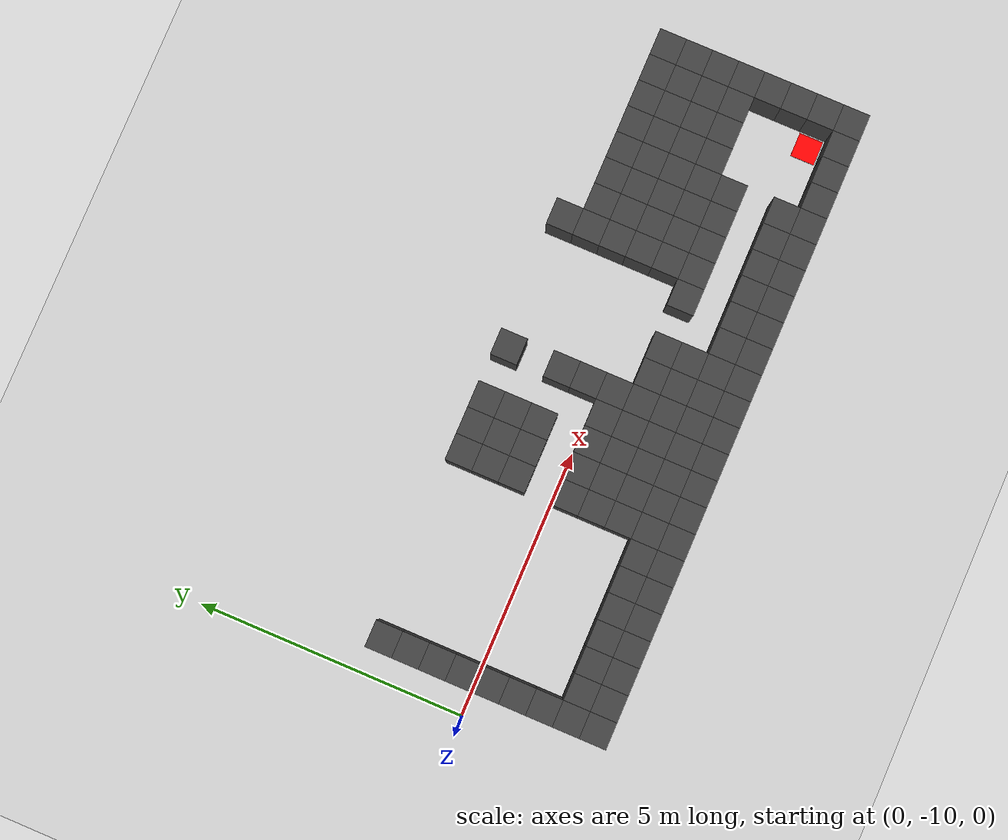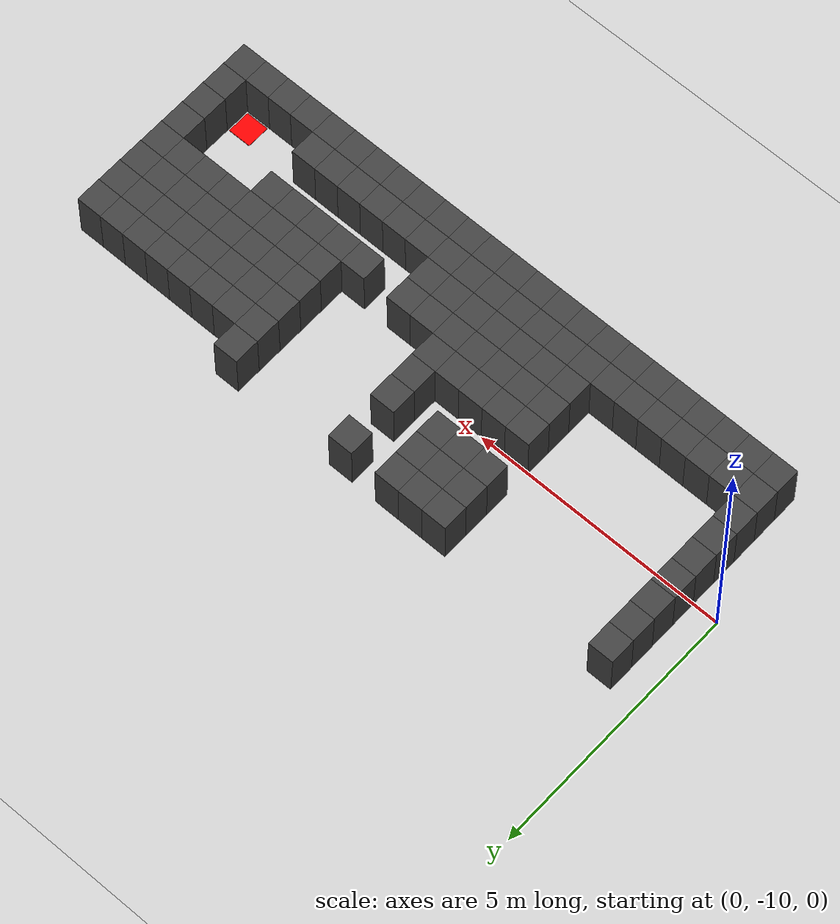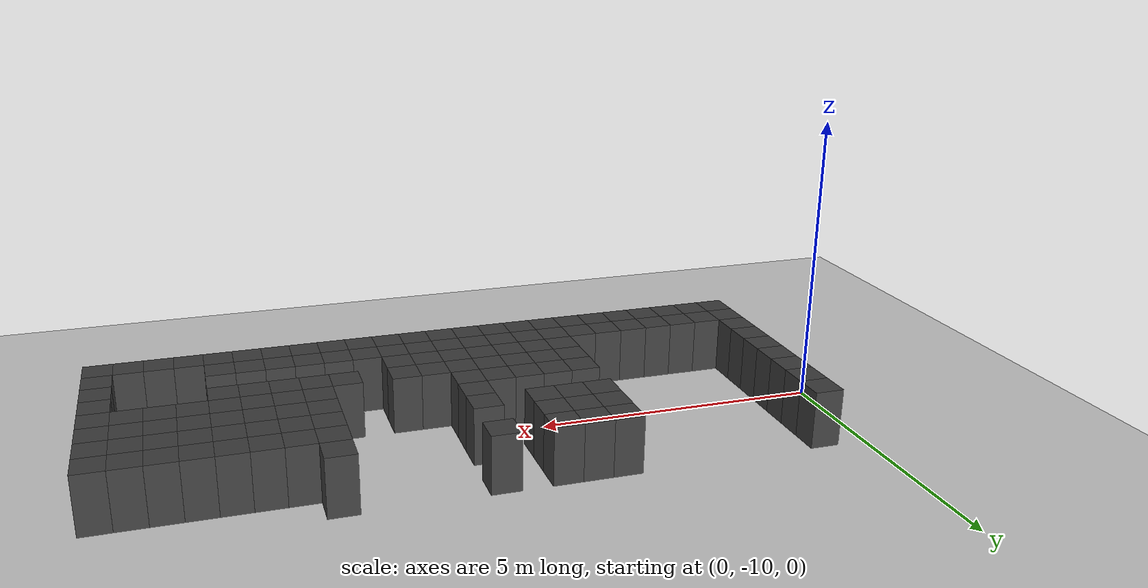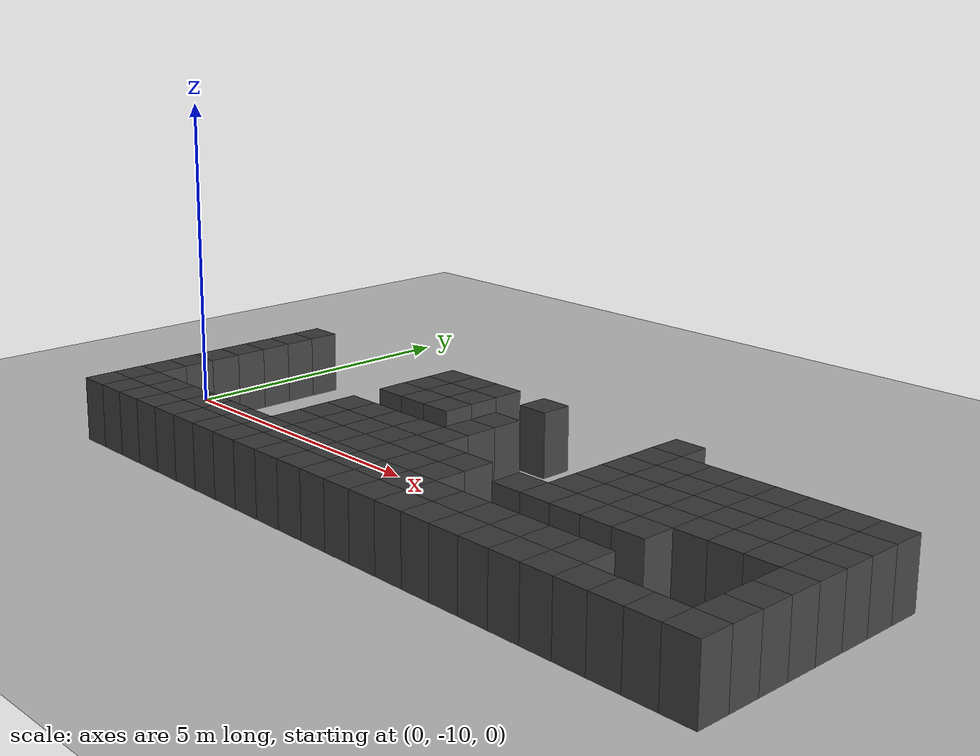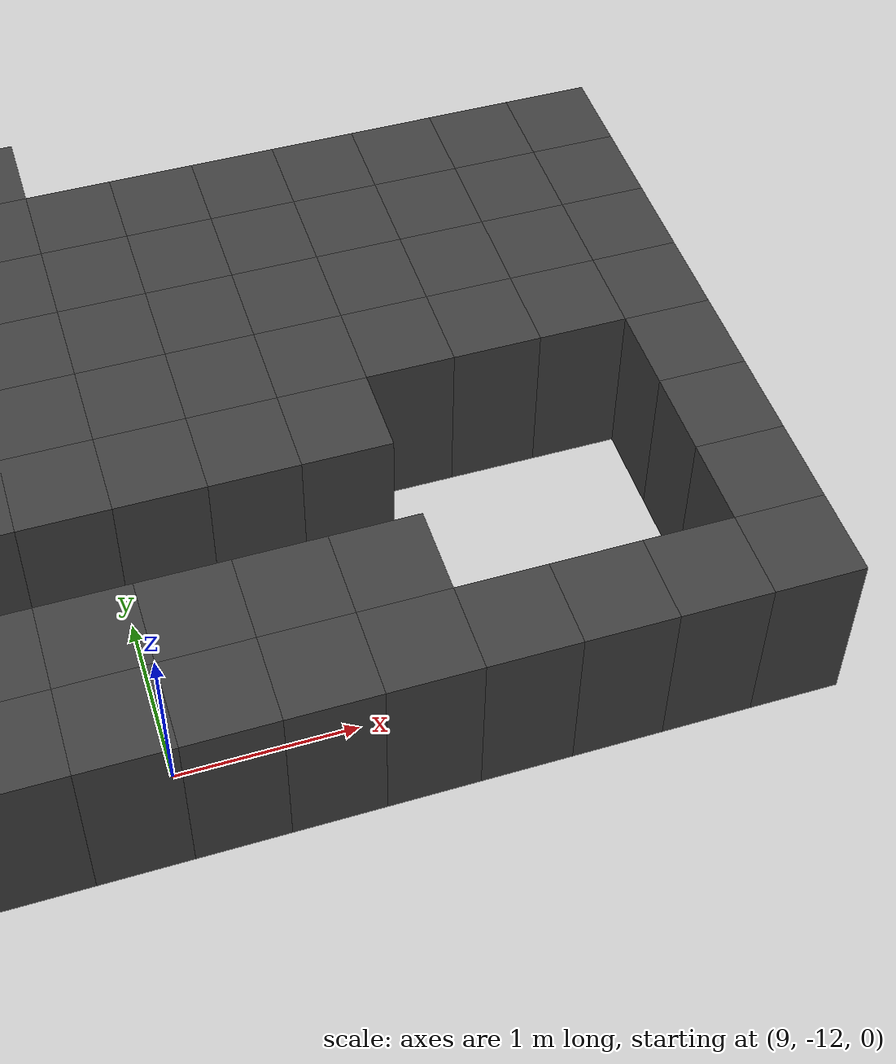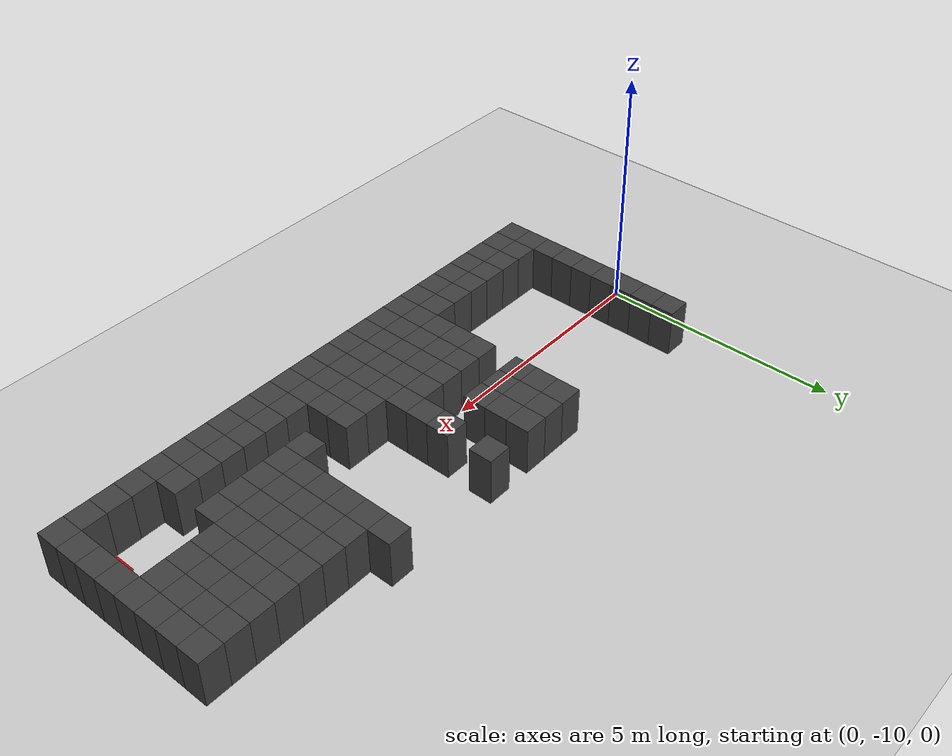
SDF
<sdf version="1.7">
 <world name="map_14668">
  <model name="ground_plane">
   <static>true</static>
   <link name="link">
    <collision name="collision">
     <geometry><plane><normal>0 0 1</normal><size>200 200</size></plane></geometry>
    </collision>
    <visual name="visual">
     <geometry><plane><normal>0 0 1</normal><size>200 200</size></plane></geometry>
     <material><ambient>0.8 0.8 0.8 1</ambient><diffuse>0.8 0.8 0.8 1</diffuse></material>
    </visual>
   </link>
  </model>
  <model name="maze_environment">
   <static>true</static>
   <link name="wall_1426">
    <pose>0.750 -8.250 0.500 0 0 0</pose>
    <collision name="col"><geometry><box><size>0.5 0.5 1.0</size></box></geometry></collision>
    <visual name="vis">
     <geometry><box><size>0.5 0.5 1.0</size></box></geometry>
     <material><ambient>0.15 0.15 0.15 1</ambient><diffuse>0.25 0.25 0.25 1</diffuse></material>
    </visual>
   </link>
   <link name="wall_1427">
    <pose>4.250 -8.250 0.500 0 0 0</pose>
    <collision name="col"><geometry><box><size>0.5 0.5 1.0</size></box></geometry></collision>
    <visual name="vis">
     <geometry><box><size>0.5 0.5 1.0</size></box></geometry>
     <material><ambient>0.15 0.15 0.15 1</ambient><diffuse>0.25 0.25 0.25 1</diffuse></material>
    </visual>
   </link>
   <link name="wall_1428">
    <pose>4.750 -8.250 0.500 0 0 0</pose>
    <collision name="col"><geometry><box><size>0.5 0.5 1.0</size></box></geometry></collision>
    <visual name="vis">
     <geometry><box><size>0.5 0.5 1.0</size></box></geometry>
     <material><ambient>0.15 0.15 0.15 1</ambient><diffuse>0.25 0.25 0.25 1</diffuse></material>
    </visual>
   </link>
   <link name="wall_1429">
    <pose>5.250 -8.250 0.500 0 0 0</pose>
    <collision name="col"><geometry><box><size>0.5 0.5 1.0</size></box></geometry></collision>
    <visual name="vis">
     <geometry><box><size>0.5 0.5 1.0</size></box></geometry>
     <material><ambient>0.15 0.15 0.15 1</ambient><diffuse>0.25 0.25 0.25 1</diffuse></material>
    </visual>
   </link>
   <link name="wall_1430">
    <pose>6.250 -8.250 0.500 0 0 0</pose>
    <collision name="col"><geometry><box><size>0.5 0.5 1.0</size></box></geometry></collision>
    <visual name="vis">
     <geometry><box><size>0.5 0.5 1.0</size></box></geometry>
     <material><ambient>0.15 0.15 0.15 1</ambient><diffuse>0.25 0.25 0.25 1</diffuse></material>
    </visual>
   </link>
   <link name="wall_1431">
    <pose>8.750 -8.250 0.500 0 0 0</pose>
    <collision name="col"><geometry><box><size>0.5 0.5 1.0</size></box></geometry></collision>
    <visual name="vis">
     <geometry><box><size>0.5 0.5 1.0</size></box></geometry>
     <material><ambient>0.15 0.15 0.15 1</ambient><diffuse>0.25 0.25 0.25 1</diffuse></material>
    </visual>
   </link>
   <link name="wall_1457">
    <pose>0.750 -8.750 0.500 0 0 0</pose>
    <collision name="col"><geometry><box><size>0.5 0.5 1.0</size></box></geometry></collision>
    <visual name="vis">
     <geometry><box><size>0.5 0.5 1.0</size></box></geometry>
     <material><ambient>0.15 0.15 0.15 1</ambient><diffuse>0.25 0.25 0.25 1</diffuse></material>
    </visual>
   </link>
   <link name="wall_1458">
    <pose>4.250 -8.750 0.500 0 0 0</pose>
    <collision name="col"><geometry><box><size>0.5 0.5 1.0</size></box></geometry></collision>
    <visual name="vis">
     <geometry><box><size>0.5 0.5 1.0</size></box></geometry>
     <material><ambient>0.15 0.15 0.15 1</ambient><diffuse>0.25 0.25 0.25 1</diffuse></material>
    </visual>
   </link>
   <link name="wall_1459">
    <pose>4.750 -8.750 0.500 0 0 0</pose>
    <collision name="col"><geometry><box><size>0.5 0.5 1.0</size></box></geometry></collision>
    <visual name="vis">
     <geometry><box><size>0.5 0.5 1.0</size></box></geometry>
     <material><ambient>0.15 0.15 0.15 1</ambient><diffuse>0.25 0.25 0.25 1</diffuse></material>
    </visual>
   </link>
   <link name="wall_1460">
    <pose>5.250 -8.750 0.500 0 0 0</pose>
    <collision name="col"><geometry><box><size>0.5 0.5 1.0</size></box></geometry></collision>
    <visual name="vis">
     <geometry><box><size>0.5 0.5 1.0</size></box></geometry>
     <material><ambient>0.15 0.15 0.15 1</ambient><diffuse>0.25 0.25 0.25 1</diffuse></material>
    </visual>
   </link>
   <link name="wall_1461">
    <pose>8.750 -8.750 0.500 0 0 0</pose>
    <collision name="col"><geometry><box><size>0.5 0.5 1.0</size></box></geometry></collision>
    <visual name="vis">
     <geometry><box><size>0.5 0.5 1.0</size></box></geometry>
     <material><ambient>0.15 0.15 0.15 1</ambient><diffuse>0.25 0.25 0.25 1</diffuse></material>
    </visual>
   </link>
   <link name="wall_1462">
    <pose>9.250 -8.750 0.500 0 0 0</pose>
    <collision name="col"><geometry><box><size>0.5 0.5 1.0</size></box></geometry></collision>
    <visual name="vis">
     <geometry><box><size>0.5 0.5 1.0</size></box></geometry>
     <material><ambient>0.15 0.15 0.15 1</ambient><diffuse>0.25 0.25 0.25 1</diffuse></material>
    </visual>
   </link>
   <link name="wall_1463">
    <pose>9.750 -8.750 0.500 0 0 0</pose>
    <collision name="col"><geometry><box><size>0.5 0.5 1.0</size></box></geometry></collision>
    <visual name="vis">
     <geometry><box><size>0.5 0.5 1.0</size></box></geometry>
     <material><ambient>0.15 0.15 0.15 1</ambient><diffuse>0.25 0.25 0.25 1</diffuse></material>
    </visual>
   </link>
   <link name="wall_1464">
    <pose>10.250 -8.750 0.500 0 0 0</pose>
    <collision name="col"><geometry><box><size>0.5 0.5 1.0</size></box></geometry></collision>
    <visual name="vis">
     <geometry><box><size>0.5 0.5 1.0</size></box></geometry>
     <material><ambient>0.15 0.15 0.15 1</ambient><diffuse>0.25 0.25 0.25 1</diffuse></material>
    </visual>
   </link>
   <link name="wall_1465">
    <pose>10.750 -8.750 0.500 0 0 0</pose>
    <collision name="col"><geometry><box><size>0.5 0.5 1.0</size></box></geometry></collision>
    <visual name="vis">
     <geometry><box><size>0.5 0.5 1.0</size></box></geometry>
     <material><ambient>0.15 0.15 0.15 1</ambient><diffuse>0.25 0.25 0.25 1</diffuse></material>
    </visual>
   </link>
   <link name="wall_1466">
    <pose>11.250 -8.750 0.500 0 0 0</pose>
    <collision name="col"><geometry><box><size>0.5 0.5 1.0</size></box></geometry></collision>
    <visual name="vis">
     <geometry><box><size>0.5 0.5 1.0</size></box></geometry>
     <material><ambient>0.15 0.15 0.15 1</ambient><diffuse>0.25 0.25 0.25 1</diffuse></material>
    </visual>
   </link>
   <link name="wall_1467">
    <pose>11.750 -8.750 0.500 0 0 0</pose>
    <collision name="col"><geometry><box><size>0.5 0.5 1.0</size></box></geometry></collision>
    <visual name="vis">
     <geometry><box><size>0.5 0.5 1.0</size></box></geometry>
     <material><ambient>0.15 0.15 0.15 1</ambient><diffuse>0.25 0.25 0.25 1</diffuse></material>
    </visual>
   </link>
   <link name="wall_1468">
    <pose>12.250 -8.750 0.500 0 0 0</pose>
    <collision name="col"><geometry><box><size>0.5 0.5 1.0</size></box></geometry></collision>
    <visual name="vis">
     <geometry><box><size>0.5 0.5 1.0</size></box></geometry>
     <material><ambient>0.15 0.15 0.15 1</ambient><diffuse>0.25 0.25 0.25 1</diffuse></material>
    </visual>
   </link>
   <link name="wall_1488">
    <pose>0.750 -9.250 0.500 0 0 0</pose>
    <collision name="col"><geometry><box><size>0.5 0.5 1.0</size></box></geometry></collision>
    <visual name="vis">
     <geometry><box><size>0.5 0.5 1.0</size></box></geometry>
     <material><ambient>0.15 0.15 0.15 1</ambient><diffuse>0.25 0.25 0.25 1</diffuse></material>
    </visual>
   </link>
   <link name="wall_1489">
    <pose>4.250 -9.250 0.500 0 0 0</pose>
    <collision name="col"><geometry><box><size>0.5 0.5 1.0</size></box></geometry></collision>
    <visual name="vis">
     <geometry><box><size>0.5 0.5 1.0</size></box></geometry>
     <material><ambient>0.15 0.15 0.15 1</ambient><diffuse>0.25 0.25 0.25 1</diffuse></material>
    </visual>
   </link>
   <link name="wall_1490">
    <pose>4.750 -9.250 0.500 0 0 0</pose>
    <collision name="col"><geometry><box><size>0.5 0.5 1.0</size></box></geometry></collision>
    <visual name="vis">
     <geometry><box><size>0.5 0.5 1.0</size></box></geometry>
     <material><ambient>0.15 0.15 0.15 1</ambient><diffuse>0.25 0.25 0.25 1</diffuse></material>
    </visual>
   </link>
   <link name="wall_1491">
    <pose>5.250 -9.250 0.500 0 0 0</pose>
    <collision name="col"><geometry><box><size>0.5 0.5 1.0</size></box></geometry></collision>
    <visual name="vis">
     <geometry><box><size>0.5 0.5 1.0</size></box></geometry>
     <material><ambient>0.15 0.15 0.15 1</ambient><diffuse>0.25 0.25 0.25 1</diffuse></material>
    </visual>
   </link>
   <link name="wall_1492">
    <pose>6.250 -9.250 0.500 0 0 0</pose>
    <collision name="col"><geometry><box><size>0.5 0.5 1.0</size></box></geometry></collision>
    <visual name="vis">
     <geometry><box><size>0.5 0.5 1.0</size></box></geometry>
     <material><ambient>0.15 0.15 0.15 1</ambient><diffuse>0.25 0.25 0.25 1</diffuse></material>
    </visual>
   </link>
   <link name="wall_1493">
    <pose>8.750 -9.250 0.500 0 0 0</pose>
    <collision name="col"><geometry><box><size>0.5 0.5 1.0</size></box></geometry></collision>
    <visual name="vis">
     <geometry><box><size>0.5 0.5 1.0</size></box></geometry>
     <material><ambient>0.15 0.15 0.15 1</ambient><diffuse>0.25 0.25 0.25 1</diffuse></material>
    </visual>
   </link>
   <link name="wall_1494">
    <pose>9.250 -9.250 0.500 0 0 0</pose>
    <collision name="col"><geometry><box><size>0.5 0.5 1.0</size></box></geometry></collision>
    <visual name="vis">
     <geometry><box><size>0.5 0.5 1.0</size></box></geometry>
     <material><ambient>0.15 0.15 0.15 1</ambient><diffuse>0.25 0.25 0.25 1</diffuse></material>
    </visual>
   </link>
   <link name="wall_1495">
    <pose>9.750 -9.250 0.500 0 0 0</pose>
    <collision name="col"><geometry><box><size>0.5 0.5 1.0</size></box></geometry></collision>
    <visual name="vis">
     <geometry><box><size>0.5 0.5 1.0</size></box></geometry>
     <material><ambient>0.15 0.15 0.15 1</ambient><diffuse>0.25 0.25 0.25 1</diffuse></material>
    </visual>
   </link>
   <link name="wall_1496">
    <pose>10.250 -9.250 0.500 0 0 0</pose>
    <collision name="col"><geometry><box><size>0.5 0.5 1.0</size></box></geometry></collision>
    <visual name="vis">
     <geometry><box><size>0.5 0.5 1.0</size></box></geometry>
     <material><ambient>0.15 0.15 0.15 1</ambient><diffuse>0.25 0.25 0.25 1</diffuse></material>
    </visual>
   </link>
   <link name="wall_1497">
    <pose>10.750 -9.250 0.500 0 0 0</pose>
    <collision name="col"><geometry><box><size>0.5 0.5 1.0</size></box></geometry></collision>
    <visual name="vis">
     <geometry><box><size>0.5 0.5 1.0</size></box></geometry>
     <material><ambient>0.15 0.15 0.15 1</ambient><diffuse>0.25 0.25 0.25 1</diffuse></material>
    </visual>
   </link>
   <link name="wall_1498">
    <pose>11.250 -9.250 0.500 0 0 0</pose>
    <collision name="col"><geometry><box><size>0.5 0.5 1.0</size></box></geometry></collision>
    <visual name="vis">
     <geometry><box><size>0.5 0.5 1.0</size></box></geometry>
     <material><ambient>0.15 0.15 0.15 1</ambient><diffuse>0.25 0.25 0.25 1</diffuse></material>
    </visual>
   </link>
   <link name="wall_1499">
    <pose>11.750 -9.250 0.500 0 0 0</pose>
    <collision name="col"><geometry><box><size>0.5 0.5 1.0</size></box></geometry></collision>
    <visual name="vis">
     <geometry><box><size>0.5 0.5 1.0</size></box></geometry>
     <material><ambient>0.15 0.15 0.15 1</ambient><diffuse>0.25 0.25 0.25 1</diffuse></material>
    </visual>
   </link>
   <link name="wall_1500">
    <pose>12.250 -9.250 0.500 0 0 0</pose>
    <collision name="col"><geometry><box><size>0.5 0.5 1.0</size></box></geometry></collision>
    <visual name="vis">
     <geometry><box><size>0.5 0.5 1.0</size></box></geometry>
     <material><ambient>0.15 0.15 0.15 1</ambient><diffuse>0.25 0.25 0.25 1</diffuse></material>
    </visual>
   </link>
   <link name="wall_1520">
    <pose>0.750 -9.750 0.500 0 0 0</pose>
    <collision name="col"><geometry><box><size>0.5 0.5 1.0</size></box></geometry></collision>
    <visual name="vis">
     <geometry><box><size>0.5 0.5 1.0</size></box></geometry>
     <material><ambient>0.15 0.15 0.15 1</ambient><diffuse>0.25 0.25 0.25 1</diffuse></material>
    </visual>
   </link>
   <link name="wall_1521">
    <pose>6.250 -9.750 0.500 0 0 0</pose>
    <collision name="col"><geometry><box><size>0.5 0.5 1.0</size></box></geometry></collision>
    <visual name="vis">
     <geometry><box><size>0.5 0.5 1.0</size></box></geometry>
     <material><ambient>0.15 0.15 0.15 1</ambient><diffuse>0.25 0.25 0.25 1</diffuse></material>
    </visual>
   </link>
   <link name="wall_1522">
    <pose>8.750 -9.750 0.500 0 0 0</pose>
    <collision name="col"><geometry><box><size>0.5 0.5 1.0</size></box></geometry></collision>
    <visual name="vis">
     <geometry><box><size>0.5 0.5 1.0</size></box></geometry>
     <material><ambient>0.15 0.15 0.15 1</ambient><diffuse>0.25 0.25 0.25 1</diffuse></material>
    </visual>
   </link>
   <link name="wall_1523">
    <pose>9.250 -9.750 0.500 0 0 0</pose>
    <collision name="col"><geometry><box><size>0.5 0.5 1.0</size></box></geometry></collision>
    <visual name="vis">
     <geometry><box><size>0.5 0.5 1.0</size></box></geometry>
     <material><ambient>0.15 0.15 0.15 1</ambient><diffuse>0.25 0.25 0.25 1</diffuse></material>
    </visual>
   </link>
   <link name="wall_1524">
    <pose>9.750 -9.750 0.500 0 0 0</pose>
    <collision name="col"><geometry><box><size>0.5 0.5 1.0</size></box></geometry></collision>
    <visual name="vis">
     <geometry><box><size>0.5 0.5 1.0</size></box></geometry>
     <material><ambient>0.15 0.15 0.15 1</ambient><diffuse>0.25 0.25 0.25 1</diffuse></material>
    </visual>
   </link>
   <link name="wall_1525">
    <pose>10.250 -9.750 0.500 0 0 0</pose>
    <collision name="col"><geometry><box><size>0.5 0.5 1.0</size></box></geometry></collision>
    <visual name="vis">
     <geometry><box><size>0.5 0.5 1.0</size></box></geometry>
     <material><ambient>0.15 0.15 0.15 1</ambient><diffuse>0.25 0.25 0.25 1</diffuse></material>
    </visual>
   </link>
   <link name="wall_1526">
    <pose>10.750 -9.750 0.500 0 0 0</pose>
    <collision name="col"><geometry><box><size>0.5 0.5 1.0</size></box></geometry></collision>
    <visual name="vis">
     <geometry><box><size>0.5 0.5 1.0</size></box></geometry>
     <material><ambient>0.15 0.15 0.15 1</ambient><diffuse>0.25 0.25 0.25 1</diffuse></material>
    </visual>
   </link>
   <link name="wall_1527">
    <pose>11.250 -9.750 0.500 0 0 0</pose>
    <collision name="col"><geometry><box><size>0.5 0.5 1.0</size></box></geometry></collision>
    <visual name="vis">
     <geometry><box><size>0.5 0.5 1.0</size></box></geometry>
     <material><ambient>0.15 0.15 0.15 1</ambient><diffuse>0.25 0.25 0.25 1</diffuse></material>
    </visual>
   </link>
   <link name="wall_1528">
    <pose>11.750 -9.750 0.500 0 0 0</pose>
    <collision name="col"><geometry><box><size>0.5 0.5 1.0</size></box></geometry></collision>
    <visual name="vis">
     <geometry><box><size>0.5 0.5 1.0</size></box></geometry>
     <material><ambient>0.15 0.15 0.15 1</ambient><diffuse>0.25 0.25 0.25 1</diffuse></material>
    </visual>
   </link>
   <link name="wall_1529">
    <pose>12.250 -9.750 0.500 0 0 0</pose>
    <collision name="col"><geometry><box><size>0.5 0.5 1.0</size></box></geometry></collision>
    <visual name="vis">
     <geometry><box><size>0.5 0.5 1.0</size></box></geometry>
     <material><ambient>0.15 0.15 0.15 1</ambient><diffuse>0.25 0.25 0.25 1</diffuse></material>
    </visual>
   </link>
   <link name="wall_1549">
    <pose>0.750 -10.250 0.500 0 0 0</pose>
    <collision name="col"><geometry><box><size>0.5 0.5 1.0</size></box></geometry></collision>
    <visual name="vis">
     <geometry><box><size>0.5 0.5 1.0</size></box></geometry>
     <material><ambient>0.15 0.15 0.15 1</ambient><diffuse>0.25 0.25 0.25 1</diffuse></material>
    </visual>
   </link>
   <link name="wall_1550">
    <pose>4.250 -10.250 0.500 0 0 0</pose>
    <collision name="col"><geometry><box><size>0.5 0.5 1.0</size></box></geometry></collision>
    <visual name="vis">
     <geometry><box><size>0.5 0.5 1.0</size></box></geometry>
     <material><ambient>0.15 0.15 0.15 1</ambient><diffuse>0.25 0.25 0.25 1</diffuse></material>
    </visual>
   </link>
   <link name="wall_1551">
    <pose>4.750 -10.250 0.500 0 0 0</pose>
    <collision name="col"><geometry><box><size>0.5 0.5 1.0</size></box></geometry></collision>
    <visual name="vis">
     <geometry><box><size>0.5 0.5 1.0</size></box></geometry>
     <material><ambient>0.15 0.15 0.15 1</ambient><diffuse>0.25 0.25 0.25 1</diffuse></material>
    </visual>
   </link>
   <link name="wall_1552">
    <pose>5.250 -10.250 0.500 0 0 0</pose>
    <collision name="col"><geometry><box><size>0.5 0.5 1.0</size></box></geometry></collision>
    <visual name="vis">
     <geometry><box><size>0.5 0.5 1.0</size></box></geometry>
     <material><ambient>0.15 0.15 0.15 1</ambient><diffuse>0.25 0.25 0.25 1</diffuse></material>
    </visual>
   </link>
   <link name="wall_1553">
    <pose>5.750 -10.250 0.500 0 0 0</pose>
    <collision name="col"><geometry><box><size>0.5 0.5 1.0</size></box></geometry></collision>
    <visual name="vis">
     <geometry><box><size>0.5 0.5 1.0</size></box></geometry>
     <material><ambient>0.15 0.15 0.15 1</ambient><diffuse>0.25 0.25 0.25 1</diffuse></material>
    </visual>
   </link>
   <link name="wall_1554">
    <pose>6.250 -10.250 0.500 0 0 0</pose>
    <collision name="col"><geometry><box><size>0.5 0.5 1.0</size></box></geometry></collision>
    <visual name="vis">
     <geometry><box><size>0.5 0.5 1.0</size></box></geometry>
     <material><ambient>0.15 0.15 0.15 1</ambient><diffuse>0.25 0.25 0.25 1</diffuse></material>
    </visual>
   </link>
   <link name="wall_1555">
    <pose>8.750 -10.250 0.500 0 0 0</pose>
    <collision name="col"><geometry><box><size>0.5 0.5 1.0</size></box></geometry></collision>
    <visual name="vis">
     <geometry><box><size>0.5 0.5 1.0</size></box></geometry>
     <material><ambient>0.15 0.15 0.15 1</ambient><diffuse>0.25 0.25 0.25 1</diffuse></material>
    </visual>
   </link>
   <link name="wall_1556">
    <pose>9.250 -10.250 0.500 0 0 0</pose>
    <collision name="col"><geometry><box><size>0.5 0.5 1.0</size></box></geometry></collision>
    <visual name="vis">
     <geometry><box><size>0.5 0.5 1.0</size></box></geometry>
     <material><ambient>0.15 0.15 0.15 1</ambient><diffuse>0.25 0.25 0.25 1</diffuse></material>
    </visual>
   </link>
   <link name="wall_1557">
    <pose>9.750 -10.250 0.500 0 0 0</pose>
    <collision name="col"><geometry><box><size>0.5 0.5 1.0</size></box></geometry></collision>
    <visual name="vis">
     <geometry><box><size>0.5 0.5 1.0</size></box></geometry>
     <material><ambient>0.15 0.15 0.15 1</ambient><diffuse>0.25 0.25 0.25 1</diffuse></material>
    </visual>
   </link>
   <link name="wall_1558">
    <pose>10.250 -10.250 0.500 0 0 0</pose>
    <collision name="col"><geometry><box><size>0.5 0.5 1.0</size></box></geometry></collision>
    <visual name="vis">
     <geometry><box><size>0.5 0.5 1.0</size></box></geometry>
     <material><ambient>0.15 0.15 0.15 1</ambient><diffuse>0.25 0.25 0.25 1</diffuse></material>
    </visual>
   </link>
   <link name="wall_1559">
    <pose>10.750 -10.250 0.500 0 0 0</pose>
    <collision name="col"><geometry><box><size>0.5 0.5 1.0</size></box></geometry></collision>
    <visual name="vis">
     <geometry><box><size>0.5 0.5 1.0</size></box></geometry>
     <material><ambient>0.15 0.15 0.15 1</ambient><diffuse>0.25 0.25 0.25 1</diffuse></material>
    </visual>
   </link>
   <link name="wall_1560">
    <pose>11.250 -10.250 0.500 0 0 0</pose>
    <collision name="col"><geometry><box><size>0.5 0.5 1.0</size></box></geometry></collision>
    <visual name="vis">
     <geometry><box><size>0.5 0.5 1.0</size></box></geometry>
     <material><ambient>0.15 0.15 0.15 1</ambient><diffuse>0.25 0.25 0.25 1</diffuse></material>
    </visual>
   </link>
   <link name="wall_1561">
    <pose>11.750 -10.250 0.500 0 0 0</pose>
    <collision name="col"><geometry><box><size>0.5 0.5 1.0</size></box></geometry></collision>
    <visual name="vis">
     <geometry><box><size>0.5 0.5 1.0</size></box></geometry>
     <material><ambient>0.15 0.15 0.15 1</ambient><diffuse>0.25 0.25 0.25 1</diffuse></material>
    </visual>
   </link>
   <link name="wall_1562">
    <pose>12.250 -10.250 0.500 0 0 0</pose>
    <collision name="col"><geometry><box><size>0.5 0.5 1.0</size></box></geometry></collision>
    <visual name="vis">
     <geometry><box><size>0.5 0.5 1.0</size></box></geometry>
     <material><ambient>0.15 0.15 0.15 1</ambient><diffuse>0.25 0.25 0.25 1</diffuse></material>
    </visual>
   </link>
   <link name="wall_1589">
    <pose>0.750 -10.750 0.500 0 0 0</pose>
    <collision name="col"><geometry><box><size>0.5 0.5 1.0</size></box></geometry></collision>
    <visual name="vis">
     <geometry><box><size>0.5 0.5 1.0</size></box></geometry>
     <material><ambient>0.15 0.15 0.15 1</ambient><diffuse>0.25 0.25 0.25 1</diffuse></material>
    </visual>
   </link>
   <link name="wall_1590">
    <pose>4.250 -10.750 0.500 0 0 0</pose>
    <collision name="col"><geometry><box><size>0.5 0.5 1.0</size></box></geometry></collision>
    <visual name="vis">
     <geometry><box><size>0.5 0.5 1.0</size></box></geometry>
     <material><ambient>0.15 0.15 0.15 1</ambient><diffuse>0.25 0.25 0.25 1</diffuse></material>
    </visual>
   </link>
   <link name="wall_1591">
    <pose>4.750 -10.750 0.500 0 0 0</pose>
    <collision name="col"><geometry><box><size>0.5 0.5 1.0</size></box></geometry></collision>
    <visual name="vis">
     <geometry><box><size>0.5 0.5 1.0</size></box></geometry>
     <material><ambient>0.15 0.15 0.15 1</ambient><diffuse>0.25 0.25 0.25 1</diffuse></material>
    </visual>
   </link>
   <link name="wall_1592">
    <pose>5.250 -10.750 0.500 0 0 0</pose>
    <collision name="col"><geometry><box><size>0.5 0.5 1.0</size></box></geometry></collision>
    <visual name="vis">
     <geometry><box><size>0.5 0.5 1.0</size></box></geometry>
     <material><ambient>0.15 0.15 0.15 1</ambient><diffuse>0.25 0.25 0.25 1</diffuse></material>
    </visual>
   </link>
   <link name="wall_1593">
    <pose>5.750 -10.750 0.500 0 0 0</pose>
    <collision name="col"><geometry><box><size>0.5 0.5 1.0</size></box></geometry></collision>
    <visual name="vis">
     <geometry><box><size>0.5 0.5 1.0</size></box></geometry>
     <material><ambient>0.15 0.15 0.15 1</ambient><diffuse>0.25 0.25 0.25 1</diffuse></material>
    </visual>
   </link>
   <link name="wall_1594">
    <pose>6.250 -10.750 0.500 0 0 0</pose>
    <collision name="col"><geometry><box><size>0.5 0.5 1.0</size></box></geometry></collision>
    <visual name="vis">
     <geometry><box><size>0.5 0.5 1.0</size></box></geometry>
     <material><ambient>0.15 0.15 0.15 1</ambient><diffuse>0.25 0.25 0.25 1</diffuse></material>
    </visual>
   </link>
   <link name="wall_1595">
    <pose>6.750 -10.750 0.500 0 0 0</pose>
    <collision name="col"><geometry><box><size>0.5 0.5 1.0</size></box></geometry></collision>
    <visual name="vis">
     <geometry><box><size>0.5 0.5 1.0</size></box></geometry>
     <material><ambient>0.15 0.15 0.15 1</ambient><diffuse>0.25 0.25 0.25 1</diffuse></material>
    </visual>
   </link>
   <link name="wall_1596">
    <pose>7.250 -10.750 0.500 0 0 0</pose>
    <collision name="col"><geometry><box><size>0.5 0.5 1.0</size></box></geometry></collision>
    <visual name="vis">
     <geometry><box><size>0.5 0.5 1.0</size></box></geometry>
     <material><ambient>0.15 0.15 0.15 1</ambient><diffuse>0.25 0.25 0.25 1</diffuse></material>
    </visual>
   </link>
   <link name="wall_1597">
    <pose>8.250 -10.750 0.500 0 0 0</pose>
    <collision name="col"><geometry><box><size>0.5 0.5 1.0</size></box></geometry></collision>
    <visual name="vis">
     <geometry><box><size>0.5 0.5 1.0</size></box></geometry>
     <material><ambient>0.15 0.15 0.15 1</ambient><diffuse>0.25 0.25 0.25 1</diffuse></material>
    </visual>
   </link>
   <link name="wall_1598">
    <pose>8.750 -10.750 0.500 0 0 0</pose>
    <collision name="col"><geometry><box><size>0.5 0.5 1.0</size></box></geometry></collision>
    <visual name="vis">
     <geometry><box><size>0.5 0.5 1.0</size></box></geometry>
     <material><ambient>0.15 0.15 0.15 1</ambient><diffuse>0.25 0.25 0.25 1</diffuse></material>
    </visual>
   </link>
   <link name="wall_1599">
    <pose>9.250 -10.750 0.500 0 0 0</pose>
    <collision name="col"><geometry><box><size>0.5 0.5 1.0</size></box></geometry></collision>
    <visual name="vis">
     <geometry><box><size>0.5 0.5 1.0</size></box></geometry>
     <material><ambient>0.15 0.15 0.15 1</ambient><diffuse>0.25 0.25 0.25 1</diffuse></material>
    </visual>
   </link>
   <link name="wall_1600">
    <pose>9.750 -10.750 0.500 0 0 0</pose>
    <collision name="col"><geometry><box><size>0.5 0.5 1.0</size></box></geometry></collision>
    <visual name="vis">
     <geometry><box><size>0.5 0.5 1.0</size></box></geometry>
     <material><ambient>0.15 0.15 0.15 1</ambient><diffuse>0.25 0.25 0.25 1</diffuse></material>
    </visual>
   </link>
   <link name="wall_1601">
    <pose>10.250 -10.750 0.500 0 0 0</pose>
    <collision name="col"><geometry><box><size>0.5 0.5 1.0</size></box></geometry></collision>
    <visual name="vis">
     <geometry><box><size>0.5 0.5 1.0</size></box></geometry>
     <material><ambient>0.15 0.15 0.15 1</ambient><diffuse>0.25 0.25 0.25 1</diffuse></material>
    </visual>
   </link>
   <link name="wall_1602">
    <pose>12.250 -10.750 0.500 0 0 0</pose>
    <collision name="col"><geometry><box><size>0.5 0.5 1.0</size></box></geometry></collision>
    <visual name="vis">
     <geometry><box><size>0.5 0.5 1.0</size></box></geometry>
     <material><ambient>0.15 0.15 0.15 1</ambient><diffuse>0.25 0.25 0.25 1</diffuse></material>
    </visual>
   </link>
   <link name="wall_1629">
    <pose>0.750 -11.250 0.500 0 0 0</pose>
    <collision name="col"><geometry><box><size>0.5 0.5 1.0</size></box></geometry></collision>
    <visual name="vis">
     <geometry><box><size>0.5 0.5 1.0</size></box></geometry>
     <material><ambient>0.15 0.15 0.15 1</ambient><diffuse>0.25 0.25 0.25 1</diffuse></material>
    </visual>
   </link>
   <link name="wall_1630">
    <pose>4.250 -11.250 0.500 0 0 0</pose>
    <collision name="col"><geometry><box><size>0.5 0.5 1.0</size></box></geometry></collision>
    <visual name="vis">
     <geometry><box><size>0.5 0.5 1.0</size></box></geometry>
     <material><ambient>0.15 0.15 0.15 1</ambient><diffuse>0.25 0.25 0.25 1</diffuse></material>
    </visual>
   </link>
   <link name="wall_1631">
    <pose>4.750 -11.250 0.500 0 0 0</pose>
    <collision name="col"><geometry><box><size>0.5 0.5 1.0</size></box></geometry></collision>
    <visual name="vis">
     <geometry><box><size>0.5 0.5 1.0</size></box></geometry>
     <material><ambient>0.15 0.15 0.15 1</ambient><diffuse>0.25 0.25 0.25 1</diffuse></material>
    </visual>
   </link>
   <link name="wall_1632">
    <pose>5.250 -11.250 0.500 0 0 0</pose>
    <collision name="col"><geometry><box><size>0.5 0.5 1.0</size></box></geometry></collision>
    <visual name="vis">
     <geometry><box><size>0.5 0.5 1.0</size></box></geometry>
     <material><ambient>0.15 0.15 0.15 1</ambient><diffuse>0.25 0.25 0.25 1</diffuse></material>
    </visual>
   </link>
   <link name="wall_1633">
    <pose>5.750 -11.250 0.500 0 0 0</pose>
    <collision name="col"><geometry><box><size>0.5 0.5 1.0</size></box></geometry></collision>
    <visual name="vis">
     <geometry><box><size>0.5 0.5 1.0</size></box></geometry>
     <material><ambient>0.15 0.15 0.15 1</ambient><diffuse>0.25 0.25 0.25 1</diffuse></material>
    </visual>
   </link>
   <link name="wall_1634">
    <pose>6.250 -11.250 0.500 0 0 0</pose>
    <collision name="col"><geometry><box><size>0.5 0.5 1.0</size></box></geometry></collision>
    <visual name="vis">
     <geometry><box><size>0.5 0.5 1.0</size></box></geometry>
     <material><ambient>0.15 0.15 0.15 1</ambient><diffuse>0.25 0.25 0.25 1</diffuse></material>
    </visual>
   </link>
   <link name="wall_1635">
    <pose>6.750 -11.250 0.500 0 0 0</pose>
    <collision name="col"><geometry><box><size>0.5 0.5 1.0</size></box></geometry></collision>
    <visual name="vis">
     <geometry><box><size>0.5 0.5 1.0</size></box></geometry>
     <material><ambient>0.15 0.15 0.15 1</ambient><diffuse>0.25 0.25 0.25 1</diffuse></material>
    </visual>
   </link>
   <link name="wall_1636">
    <pose>7.250 -11.250 0.500 0 0 0</pose>
    <collision name="col"><geometry><box><size>0.5 0.5 1.0</size></box></geometry></collision>
    <visual name="vis">
     <geometry><box><size>0.5 0.5 1.0</size></box></geometry>
     <material><ambient>0.15 0.15 0.15 1</ambient><diffuse>0.25 0.25 0.25 1</diffuse></material>
    </visual>
   </link>
   <link name="wall_1637">
    <pose>12.250 -11.250 0.500 0 0 0</pose>
    <collision name="col"><geometry><box><size>0.5 0.5 1.0</size></box></geometry></collision>
    <visual name="vis">
     <geometry><box><size>0.5 0.5 1.0</size></box></geometry>
     <material><ambient>0.15 0.15 0.15 1</ambient><diffuse>0.25 0.25 0.25 1</diffuse></material>
    </visual>
   </link>
   <link name="wall_1664">
    <pose>0.750 -11.750 0.500 0 0 0</pose>
    <collision name="col"><geometry><box><size>0.5 0.5 1.0</size></box></geometry></collision>
    <visual name="vis">
     <geometry><box><size>0.5 0.5 1.0</size></box></geometry>
     <material><ambient>0.15 0.15 0.15 1</ambient><diffuse>0.25 0.25 0.25 1</diffuse></material>
    </visual>
   </link>
   <link name="wall_1665">
    <pose>1.250 -11.750 0.500 0 0 0</pose>
    <collision name="col"><geometry><box><size>0.5 0.5 1.0</size></box></geometry></collision>
    <visual name="vis">
     <geometry><box><size>0.5 0.5 1.0</size></box></geometry>
     <material><ambient>0.15 0.15 0.15 1</ambient><diffuse>0.25 0.25 0.25 1</diffuse></material>
    </visual>
   </link>
   <link name="wall_1666">
    <pose>1.750 -11.750 0.500 0 0 0</pose>
    <collision name="col"><geometry><box><size>0.5 0.5 1.0</size></box></geometry></collision>
    <visual name="vis">
     <geometry><box><size>0.5 0.5 1.0</size></box></geometry>
     <material><ambient>0.15 0.15 0.15 1</ambient><diffuse>0.25 0.25 0.25 1</diffuse></material>
    </visual>
   </link>
   <link name="wall_1667">
    <pose>2.250 -11.750 0.500 0 0 0</pose>
    <collision name="col"><geometry><box><size>0.5 0.5 1.0</size></box></geometry></collision>
    <visual name="vis">
     <geometry><box><size>0.5 0.5 1.0</size></box></geometry>
     <material><ambient>0.15 0.15 0.15 1</ambient><diffuse>0.25 0.25 0.25 1</diffuse></material>
    </visual>
   </link>
   <link name="wall_1668">
    <pose>2.750 -11.750 0.500 0 0 0</pose>
    <collision name="col"><geometry><box><size>0.5 0.5 1.0</size></box></geometry></collision>
    <visual name="vis">
     <geometry><box><size>0.5 0.5 1.0</size></box></geometry>
     <material><ambient>0.15 0.15 0.15 1</ambient><diffuse>0.25 0.25 0.25 1</diffuse></material>
    </visual>
   </link>
   <link name="wall_1669">
    <pose>3.250 -11.750 0.500 0 0 0</pose>
    <collision name="col"><geometry><box><size>0.5 0.5 1.0</size></box></geometry></collision>
    <visual name="vis">
     <geometry><box><size>0.5 0.5 1.0</size></box></geometry>
     <material><ambient>0.15 0.15 0.15 1</ambient><diffuse>0.25 0.25 0.25 1</diffuse></material>
    </visual>
   </link>
   <link name="wall_1670">
    <pose>3.750 -11.750 0.500 0 0 0</pose>
    <collision name="col"><geometry><box><size>0.5 0.5 1.0</size></box></geometry></collision>
    <visual name="vis">
     <geometry><box><size>0.5 0.5 1.0</size></box></geometry>
     <material><ambient>0.15 0.15 0.15 1</ambient><diffuse>0.25 0.25 0.25 1</diffuse></material>
    </visual>
   </link>
   <link name="wall_1671">
    <pose>4.250 -11.750 0.500 0 0 0</pose>
    <collision name="col"><geometry><box><size>0.5 0.5 1.0</size></box></geometry></collision>
    <visual name="vis">
     <geometry><box><size>0.5 0.5 1.0</size></box></geometry>
     <material><ambient>0.15 0.15 0.15 1</ambient><diffuse>0.25 0.25 0.25 1</diffuse></material>
    </visual>
   </link>
   <link name="wall_1672">
    <pose>4.750 -11.750 0.500 0 0 0</pose>
    <collision name="col"><geometry><box><size>0.5 0.5 1.0</size></box></geometry></collision>
    <visual name="vis">
     <geometry><box><size>0.5 0.5 1.0</size></box></geometry>
     <material><ambient>0.15 0.15 0.15 1</ambient><diffuse>0.25 0.25 0.25 1</diffuse></material>
    </visual>
   </link>
   <link name="wall_1673">
    <pose>5.250 -11.750 0.500 0 0 0</pose>
    <collision name="col"><geometry><box><size>0.5 0.5 1.0</size></box></geometry></collision>
    <visual name="vis">
     <geometry><box><size>0.5 0.5 1.0</size></box></geometry>
     <material><ambient>0.15 0.15 0.15 1</ambient><diffuse>0.25 0.25 0.25 1</diffuse></material>
    </visual>
   </link>
   <link name="wall_1674">
    <pose>5.750 -11.750 0.500 0 0 0</pose>
    <collision name="col"><geometry><box><size>0.5 0.5 1.0</size></box></geometry></collision>
    <visual name="vis">
     <geometry><box><size>0.5 0.5 1.0</size></box></geometry>
     <material><ambient>0.15 0.15 0.15 1</ambient><diffuse>0.25 0.25 0.25 1</diffuse></material>
    </visual>
   </link>
   <link name="wall_1675">
    <pose>6.250 -11.750 0.500 0 0 0</pose>
    <collision name="col"><geometry><box><size>0.5 0.5 1.0</size></box></geometry></collision>
    <visual name="vis">
     <geometry><box><size>0.5 0.5 1.0</size></box></geometry>
     <material><ambient>0.15 0.15 0.15 1</ambient><diffuse>0.25 0.25 0.25 1</diffuse></material>
    </visual>
   </link>
   <link name="wall_1676">
    <pose>6.750 -11.750 0.500 0 0 0</pose>
    <collision name="col"><geometry><box><size>0.5 0.5 1.0</size></box></geometry></collision>
    <visual name="vis">
     <geometry><box><size>0.5 0.5 1.0</size></box></geometry>
     <material><ambient>0.15 0.15 0.15 1</ambient><diffuse>0.25 0.25 0.25 1</diffuse></material>
    </visual>
   </link>
   <link name="wall_1677">
    <pose>7.250 -11.750 0.500 0 0 0</pose>
    <collision name="col"><geometry><box><size>0.5 0.5 1.0</size></box></geometry></collision>
    <visual name="vis">
     <geometry><box><size>0.5 0.5 1.0</size></box></geometry>
     <material><ambient>0.15 0.15 0.15 1</ambient><diffuse>0.25 0.25 0.25 1</diffuse></material>
    </visual>
   </link>
   <link name="wall_1678">
    <pose>7.750 -11.750 0.500 0 0 0</pose>
    <collision name="col"><geometry><box><size>0.5 0.5 1.0</size></box></geometry></collision>
    <visual name="vis">
     <geometry><box><size>0.5 0.5 1.0</size></box></geometry>
     <material><ambient>0.15 0.15 0.15 1</ambient><diffuse>0.25 0.25 0.25 1</diffuse></material>
    </visual>
   </link>
   <link name="wall_1679">
    <pose>8.250 -11.750 0.500 0 0 0</pose>
    <collision name="col"><geometry><box><size>0.5 0.5 1.0</size></box></geometry></collision>
    <visual name="vis">
     <geometry><box><size>0.5 0.5 1.0</size></box></geometry>
     <material><ambient>0.15 0.15 0.15 1</ambient><diffuse>0.25 0.25 0.25 1</diffuse></material>
    </visual>
   </link>
   <link name="wall_1680">
    <pose>8.750 -11.750 0.500 0 0 0</pose>
    <collision name="col"><geometry><box><size>0.5 0.5 1.0</size></box></geometry></collision>
    <visual name="vis">
     <geometry><box><size>0.5 0.5 1.0</size></box></geometry>
     <material><ambient>0.15 0.15 0.15 1</ambient><diffuse>0.25 0.25 0.25 1</diffuse></material>
    </visual>
   </link>
   <link name="wall_1681">
    <pose>9.250 -11.750 0.500 0 0 0</pose>
    <collision name="col"><geometry><box><size>0.5 0.5 1.0</size></box></geometry></collision>
    <visual name="vis">
     <geometry><box><size>0.5 0.5 1.0</size></box></geometry>
     <material><ambient>0.15 0.15 0.15 1</ambient><diffuse>0.25 0.25 0.25 1</diffuse></material>
    </visual>
   </link>
   <link name="wall_1682">
    <pose>9.750 -11.750 0.500 0 0 0</pose>
    <collision name="col"><geometry><box><size>0.5 0.5 1.0</size></box></geometry></collision>
    <visual name="vis">
     <geometry><box><size>0.5 0.5 1.0</size></box></geometry>
     <material><ambient>0.15 0.15 0.15 1</ambient><diffuse>0.25 0.25 0.25 1</diffuse></material>
    </visual>
   </link>
   <link name="wall_1683">
    <pose>10.250 -11.750 0.500 0 0 0</pose>
    <collision name="col"><geometry><box><size>0.5 0.5 1.0</size></box></geometry></collision>
    <visual name="vis">
     <geometry><box><size>0.5 0.5 1.0</size></box></geometry>
     <material><ambient>0.15 0.15 0.15 1</ambient><diffuse>0.25 0.25 0.25 1</diffuse></material>
    </visual>
   </link>
   <link name="wall_1684">
    <pose>12.250 -11.750 0.500 0 0 0</pose>
    <collision name="col"><geometry><box><size>0.5 0.5 1.0</size></box></geometry></collision>
    <visual name="vis">
     <geometry><box><size>0.5 0.5 1.0</size></box></geometry>
     <material><ambient>0.15 0.15 0.15 1</ambient><diffuse>0.25 0.25 0.25 1</diffuse></material>
    </visual>
   </link>
   <link name="wall_1711">
    <pose>0.750 -12.250 0.500 0 0 0</pose>
    <collision name="col"><geometry><box><size>0.5 0.5 1.0</size></box></geometry></collision>
    <visual name="vis">
     <geometry><box><size>0.5 0.5 1.0</size></box></geometry>
     <material><ambient>0.15 0.15 0.15 1</ambient><diffuse>0.25 0.25 0.25 1</diffuse></material>
    </visual>
   </link>
   <link name="wall_1712">
    <pose>1.250 -12.250 0.500 0 0 0</pose>
    <collision name="col"><geometry><box><size>0.5 0.5 1.0</size></box></geometry></collision>
    <visual name="vis">
     <geometry><box><size>0.5 0.5 1.0</size></box></geometry>
     <material><ambient>0.15 0.15 0.15 1</ambient><diffuse>0.25 0.25 0.25 1</diffuse></material>
    </visual>
   </link>
   <link name="wall_1713">
    <pose>1.750 -12.250 0.500 0 0 0</pose>
    <collision name="col"><geometry><box><size>0.5 0.5 1.0</size></box></geometry></collision>
    <visual name="vis">
     <geometry><box><size>0.5 0.5 1.0</size></box></geometry>
     <material><ambient>0.15 0.15 0.15 1</ambient><diffuse>0.25 0.25 0.25 1</diffuse></material>
    </visual>
   </link>
   <link name="wall_1714">
    <pose>2.250 -12.250 0.500 0 0 0</pose>
    <collision name="col"><geometry><box><size>0.5 0.5 1.0</size></box></geometry></collision>
    <visual name="vis">
     <geometry><box><size>0.5 0.5 1.0</size></box></geometry>
     <material><ambient>0.15 0.15 0.15 1</ambient><diffuse>0.25 0.25 0.25 1</diffuse></material>
    </visual>
   </link>
   <link name="wall_1715">
    <pose>2.750 -12.250 0.500 0 0 0</pose>
    <collision name="col"><geometry><box><size>0.5 0.5 1.0</size></box></geometry></collision>
    <visual name="vis">
     <geometry><box><size>0.5 0.5 1.0</size></box></geometry>
     <material><ambient>0.15 0.15 0.15 1</ambient><diffuse>0.25 0.25 0.25 1</diffuse></material>
    </visual>
   </link>
   <link name="wall_1716">
    <pose>3.250 -12.250 0.500 0 0 0</pose>
    <collision name="col"><geometry><box><size>0.5 0.5 1.0</size></box></geometry></collision>
    <visual name="vis">
     <geometry><box><size>0.5 0.5 1.0</size></box></geometry>
     <material><ambient>0.15 0.15 0.15 1</ambient><diffuse>0.25 0.25 0.25 1</diffuse></material>
    </visual>
   </link>
   <link name="wall_1717">
    <pose>3.750 -12.250 0.500 0 0 0</pose>
    <collision name="col"><geometry><box><size>0.5 0.5 1.0</size></box></geometry></collision>
    <visual name="vis">
     <geometry><box><size>0.5 0.5 1.0</size></box></geometry>
     <material><ambient>0.15 0.15 0.15 1</ambient><diffuse>0.25 0.25 0.25 1</diffuse></material>
    </visual>
   </link>
   <link name="wall_1718">
    <pose>4.250 -12.250 0.500 0 0 0</pose>
    <collision name="col"><geometry><box><size>0.5 0.5 1.0</size></box></geometry></collision>
    <visual name="vis">
     <geometry><box><size>0.5 0.5 1.0</size></box></geometry>
     <material><ambient>0.15 0.15 0.15 1</ambient><diffuse>0.25 0.25 0.25 1</diffuse></material>
    </visual>
   </link>
   <link name="wall_1719">
    <pose>4.750 -12.250 0.500 0 0 0</pose>
    <collision name="col"><geometry><box><size>0.5 0.5 1.0</size></box></geometry></collision>
    <visual name="vis">
     <geometry><box><size>0.5 0.5 1.0</size></box></geometry>
     <material><ambient>0.15 0.15 0.15 1</ambient><diffuse>0.25 0.25 0.25 1</diffuse></material>
    </visual>
   </link>
   <link name="wall_1720">
    <pose>5.250 -12.250 0.500 0 0 0</pose>
    <collision name="col"><geometry><box><size>0.5 0.5 1.0</size></box></geometry></collision>
    <visual name="vis">
     <geometry><box><size>0.5 0.5 1.0</size></box></geometry>
     <material><ambient>0.15 0.15 0.15 1</ambient><diffuse>0.25 0.25 0.25 1</diffuse></material>
    </visual>
   </link>
   <link name="wall_1721">
    <pose>5.750 -12.250 0.500 0 0 0</pose>
    <collision name="col"><geometry><box><size>0.5 0.5 1.0</size></box></geometry></collision>
    <visual name="vis">
     <geometry><box><size>0.5 0.5 1.0</size></box></geometry>
     <material><ambient>0.15 0.15 0.15 1</ambient><diffuse>0.25 0.25 0.25 1</diffuse></material>
    </visual>
   </link>
   <link name="wall_1722">
    <pose>6.250 -12.250 0.500 0 0 0</pose>
    <collision name="col"><geometry><box><size>0.5 0.5 1.0</size></box></geometry></collision>
    <visual name="vis">
     <geometry><box><size>0.5 0.5 1.0</size></box></geometry>
     <material><ambient>0.15 0.15 0.15 1</ambient><diffuse>0.25 0.25 0.25 1</diffuse></material>
    </visual>
   </link>
   <link name="wall_1723">
    <pose>6.750 -12.250 0.500 0 0 0</pose>
    <collision name="col"><geometry><box><size>0.5 0.5 1.0</size></box></geometry></collision>
    <visual name="vis">
     <geometry><box><size>0.5 0.5 1.0</size></box></geometry>
     <material><ambient>0.15 0.15 0.15 1</ambient><diffuse>0.25 0.25 0.25 1</diffuse></material>
    </visual>
   </link>
   <link name="wall_1724">
    <pose>7.250 -12.250 0.500 0 0 0</pose>
    <collision name="col"><geometry><box><size>0.5 0.5 1.0</size></box></geometry></collision>
    <visual name="vis">
     <geometry><box><size>0.5 0.5 1.0</size></box></geometry>
     <material><ambient>0.15 0.15 0.15 1</ambient><diffuse>0.25 0.25 0.25 1</diffuse></material>
    </visual>
   </link>
   <link name="wall_1725">
    <pose>7.750 -12.250 0.500 0 0 0</pose>
    <collision name="col"><geometry><box><size>0.5 0.5 1.0</size></box></geometry></collision>
    <visual name="vis">
     <geometry><box><size>0.5 0.5 1.0</size></box></geometry>
     <material><ambient>0.15 0.15 0.15 1</ambient><diffuse>0.25 0.25 0.25 1</diffuse></material>
    </visual>
   </link>
   <link name="wall_1726">
    <pose>8.250 -12.250 0.500 0 0 0</pose>
    <collision name="col"><geometry><box><size>0.5 0.5 1.0</size></box></geometry></collision>
    <visual name="vis">
     <geometry><box><size>0.5 0.5 1.0</size></box></geometry>
     <material><ambient>0.15 0.15 0.15 1</ambient><diffuse>0.25 0.25 0.25 1</diffuse></material>
    </visual>
   </link>
   <link name="wall_1727">
    <pose>8.750 -12.250 0.500 0 0 0</pose>
    <collision name="col"><geometry><box><size>0.5 0.5 1.0</size></box></geometry></collision>
    <visual name="vis">
     <geometry><box><size>0.5 0.5 1.0</size></box></geometry>
     <material><ambient>0.15 0.15 0.15 1</ambient><diffuse>0.25 0.25 0.25 1</diffuse></material>
    </visual>
   </link>
   <link name="wall_1728">
    <pose>9.250 -12.250 0.500 0 0 0</pose>
    <collision name="col"><geometry><box><size>0.5 0.5 1.0</size></box></geometry></collision>
    <visual name="vis">
     <geometry><box><size>0.5 0.5 1.0</size></box></geometry>
     <material><ambient>0.15 0.15 0.15 1</ambient><diffuse>0.25 0.25 0.25 1</diffuse></material>
    </visual>
   </link>
   <link name="wall_1729">
    <pose>9.750 -12.250 0.500 0 0 0</pose>
    <collision name="col"><geometry><box><size>0.5 0.5 1.0</size></box></geometry></collision>
    <visual name="vis">
     <geometry><box><size>0.5 0.5 1.0</size></box></geometry>
     <material><ambient>0.15 0.15 0.15 1</ambient><diffuse>0.25 0.25 0.25 1</diffuse></material>
    </visual>
   </link>
   <link name="wall_1730">
    <pose>10.250 -12.250 0.500 0 0 0</pose>
    <collision name="col"><geometry><box><size>0.5 0.5 1.0</size></box></geometry></collision>
    <visual name="vis">
     <geometry><box><size>0.5 0.5 1.0</size></box></geometry>
     <material><ambient>0.15 0.15 0.15 1</ambient><diffuse>0.25 0.25 0.25 1</diffuse></material>
    </visual>
   </link>
   <link name="wall_1731">
    <pose>10.750 -12.250 0.500 0 0 0</pose>
    <collision name="col"><geometry><box><size>0.5 0.5 1.0</size></box></geometry></collision>
    <visual name="vis">
     <geometry><box><size>0.5 0.5 1.0</size></box></geometry>
     <material><ambient>0.15 0.15 0.15 1</ambient><diffuse>0.25 0.25 0.25 1</diffuse></material>
    </visual>
   </link>
   <link name="wall_1732">
    <pose>11.250 -12.250 0.500 0 0 0</pose>
    <collision name="col"><geometry><box><size>0.5 0.5 1.0</size></box></geometry></collision>
    <visual name="vis">
     <geometry><box><size>0.5 0.5 1.0</size></box></geometry>
     <material><ambient>0.15 0.15 0.15 1</ambient><diffuse>0.25 0.25 0.25 1</diffuse></material>
    </visual>
   </link>
   <link name="wall_1733">
    <pose>11.750 -12.250 0.500 0 0 0</pose>
    <collision name="col"><geometry><box><size>0.5 0.5 1.0</size></box></geometry></collision>
    <visual name="vis">
     <geometry><box><size>0.5 0.5 1.0</size></box></geometry>
     <material><ambient>0.15 0.15 0.15 1</ambient><diffuse>0.25 0.25 0.25 1</diffuse></material>
    </visual>
   </link>
   <link name="wall_1734">
    <pose>12.250 -12.250 0.500 0 0 0</pose>
    <collision name="col"><geometry><box><size>0.5 0.5 1.0</size></box></geometry></collision>
    <visual name="vis">
     <geometry><box><size>0.5 0.5 1.0</size></box></geometry>
     <material><ambient>0.15 0.15 0.15 1</ambient><diffuse>0.25 0.25 0.25 1</diffuse></material>
    </visual>
   </link>
   <link name="goal_zone">
    <pose>11.750 -11.750 0.005 0 0 0</pose>
    <visual name="vis">
     <geometry><box><size>0.45 0.45 0.01</size></box></geometry>
     <material>
      <ambient>1.0 0.0 0.0 1</ambient>
      <diffuse>1.0 0.0 0.0 1</diffuse>
      <emissive>0.60 0.00 0.00 1</emissive>
     </material>
    </visual>
   </link>
  </model>
 </world>
</sdf>
